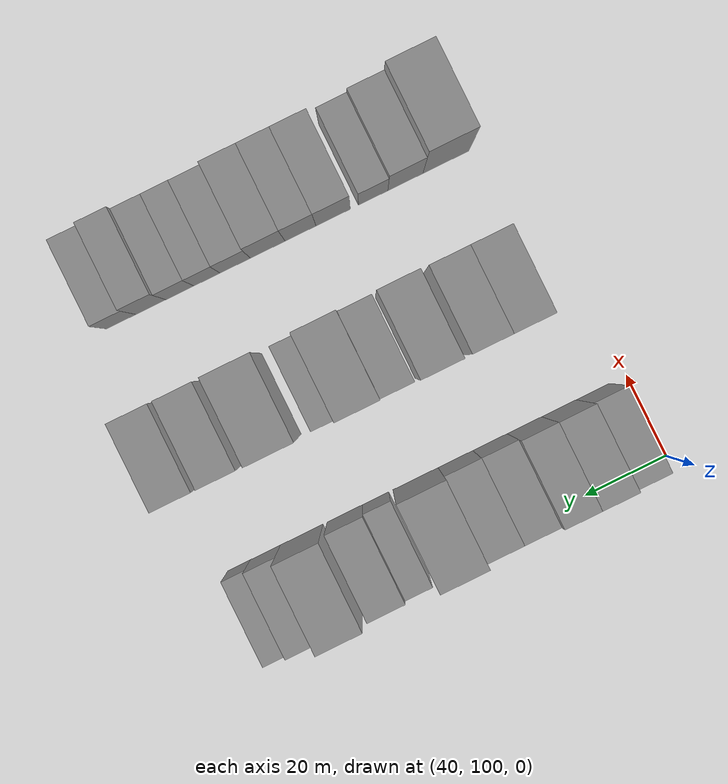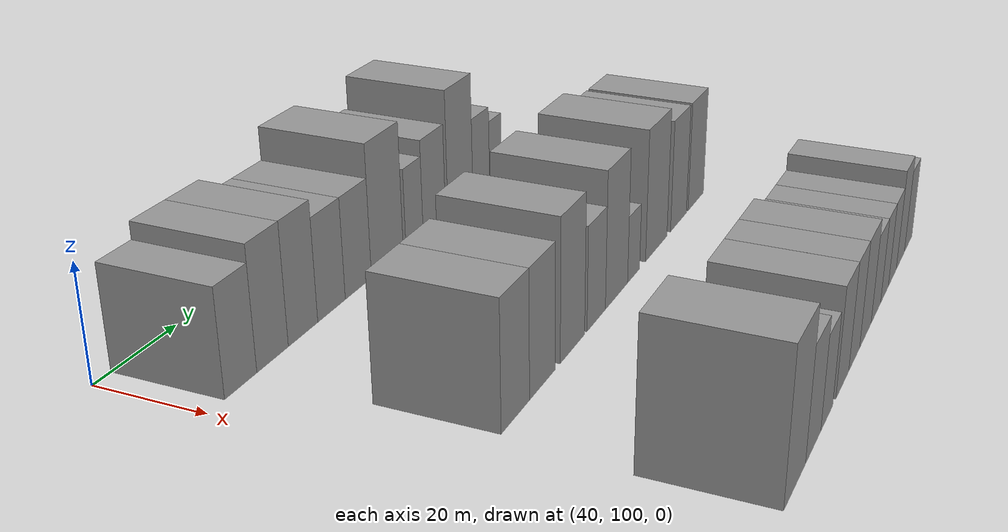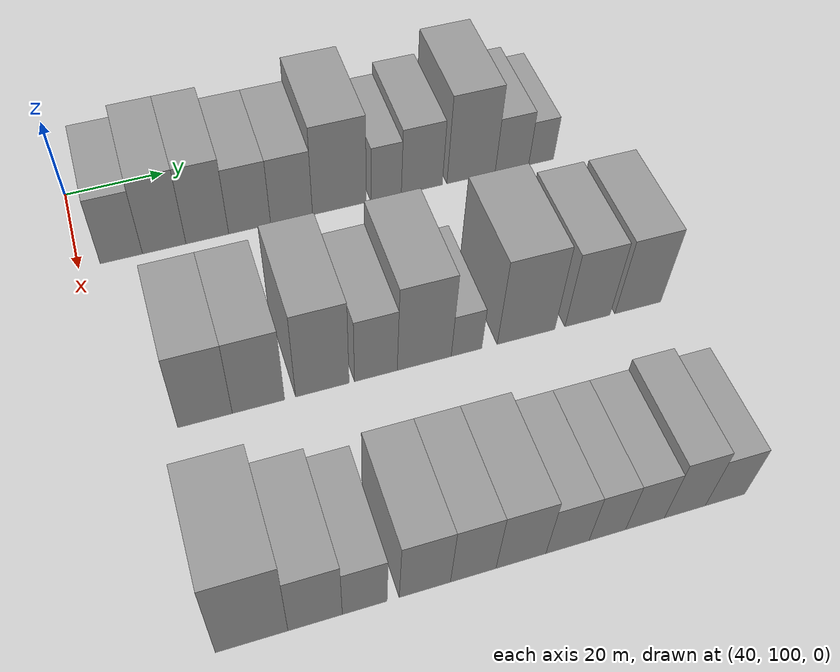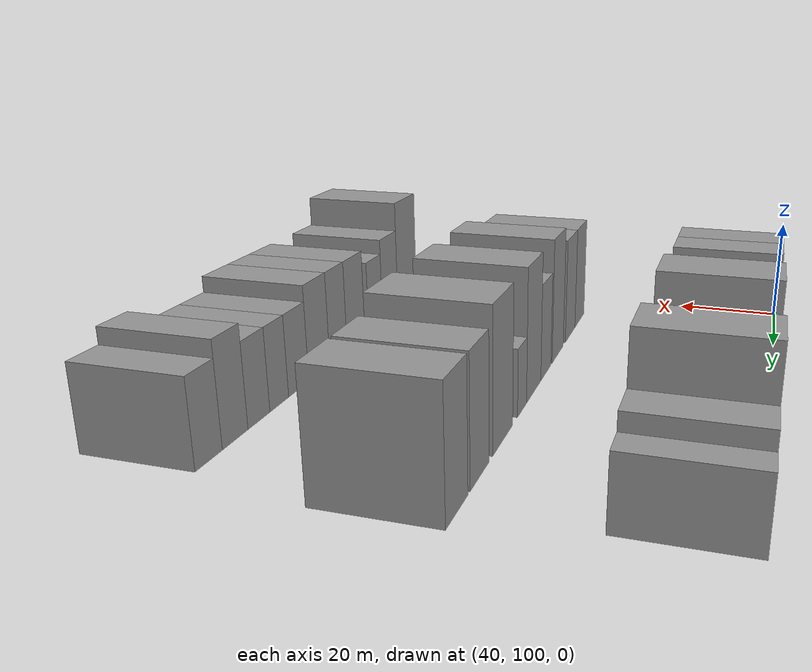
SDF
<sdf version="1.6">
 <world name="default">
  <model name="building_45">
   <static>1</static>
   <pose>50.0000 108.2754 0 0.000000 0.000000 0.000000</pose>
   <link name="link">
    <pose>0 0 9.00 0 0 0</pose>
    <collision name="collision"><geometry><box><size>20.0000 8.2067 18.0000</size></box></geometry></collision>
    <visual name="visual">
     <cast_shadows>0</cast_shadows>
     <geometry><box><size>20.0000 8.2067 18.0000</size></box></geometry>
     <material>
      <script>
       <uri>model://grey_wall/materials/scripts</uri>
       <uri>model://grey_wall/materials/textures</uri>
       <name>vrc/grey_wall</name>
      </script>
     </material>
    </visual>
   </link>
  </model>
  <model name="building_46">
   <static>1</static>
   <pose>50.0000 116.6519 0 0.000000 0.000000 0.000000</pose>
   <link name="link">
    <pose>0 0 10.50 0 0 0</pose>
    <collision name="collision"><geometry><box><size>20.0000 8.5463 21.0000</size></box></geometry></collision>
    <visual name="visual">
     <cast_shadows>0</cast_shadows>
     <geometry><box><size>20.0000 8.5463 21.0000</size></box></geometry>
     <material>
      <script>
       <uri>model://grey_wall/materials/scripts</uri>
       <uri>model://grey_wall/materials/textures</uri>
       <name>vrc/grey_wall</name>
      </script>
     </material>
    </visual>
   </link>
  </model>
  <model name="building_47">
   <static>1</static>
   <pose>50.0000 125.1842 0 0.000000 0.000000 0.000000</pose>
   <link name="link">
    <pose>0 0 10.50 0 0 0</pose>
    <collision name="collision"><geometry><box><size>20.0000 8.5184 21.0000</size></box></geometry></collision>
    <visual name="visual">
     <cast_shadows>0</cast_shadows>
     <geometry><box><size>20.0000 8.5184 21.0000</size></box></geometry>
     <material>
      <script>
       <uri>model://grey_wall/materials/scripts</uri>
       <uri>model://grey_wall/materials/textures</uri>
       <name>vrc/grey_wall</name>
      </script>
     </material>
    </visual>
   </link>
  </model>
  <model name="building_48">
   <static>1</static>
   <pose>50.0000 133.6895 0 0.000000 0.000000 0.000000</pose>
   <link name="link">
    <pose>0 0 9.00 0 0 0</pose>
    <collision name="collision"><geometry><box><size>20.0000 8.4922 18.0000</size></box></geometry></collision>
    <visual name="visual">
     <cast_shadows>0</cast_shadows>
     <geometry><box><size>20.0000 8.4922 18.0000</size></box></geometry>
     <material>
      <script>
       <uri>model://grey_wall/materials/scripts</uri>
       <uri>model://grey_wall/materials/textures</uri>
       <name>vrc/grey_wall</name>
      </script>
     </material>
    </visual>
   </link>
  </model>
  <model name="building_49">
   <static>1</static>
   <pose>50.0000 142.2258 0 0.000000 0.000000 0.000000</pose>
   <link name="link">
    <pose>0 0 9.00 0 0 0</pose>
    <collision name="collision"><geometry><box><size>20.0000 8.5804 18.0000</size></box></geometry></collision>
    <visual name="visual">
     <cast_shadows>0</cast_shadows>
     <geometry><box><size>20.0000 8.5804 18.0000</size></box></geometry>
     <material>
      <script>
       <uri>model://grey_wall/materials/scripts</uri>
       <uri>model://grey_wall/materials/textures</uri>
       <name>vrc/grey_wall</name>
      </script>
     </material>
    </visual>
   </link>
  </model>
  <model name="building_50">
   <static>1</static>
   <pose>50.0000 152.0911 0 0.000000 0.000000 0.000000</pose>
   <link name="link">
    <pose>0 0 12.00 0 0 0</pose>
    <collision name="collision"><geometry><box><size>20.0000 11.1502 24.0000</size></box></geometry></collision>
    <visual name="visual">
     <cast_shadows>0</cast_shadows>
     <geometry><box><size>20.0000 11.1502 24.0000</size></box></geometry>
     <material>
      <script>
       <uri>model://grey_wall/materials/scripts</uri>
       <uri>model://grey_wall/materials/textures</uri>
       <name>vrc/grey_wall</name>
      </script>
     </material>
    </visual>
   </link>
  </model>
  <model name="building_51">
   <static>1</static>
   <pose>50.0000 161.8931 0 0.000000 0.000000 0.000000</pose>
   <link name="link">
    <pose>0 0 7.50 0 0 0</pose>
    <collision name="collision"><geometry><box><size>20.0000 6.4537 15.0000</size></box></geometry></collision>
    <visual name="visual">
     <cast_shadows>0</cast_shadows>
     <geometry><box><size>20.0000 6.4537 15.0000</size></box></geometry>
     <material>
      <script>
       <uri>model://grey_wall/materials/scripts</uri>
       <uri>model://grey_wall/materials/textures</uri>
       <name>vrc/grey_wall</name>
      </script>
     </material>
    </visual>
   </link>
  </model>
  <model name="building_52">
   <static>1</static>
   <pose>50.0000 169.5108 0 0.000000 0.000000 0.000000</pose>
   <link name="link">
    <pose>0 0 9.00 0 0 0</pose>
    <collision name="collision"><geometry><box><size>20.0000 8.7818 18.0000</size></box></geometry></collision>
    <visual name="visual">
     <cast_shadows>0</cast_shadows>
     <geometry><box><size>20.0000 8.7818 18.0000</size></box></geometry>
     <material>
      <script>
       <uri>model://grey_wall/materials/scripts</uri>
       <uri>model://grey_wall/materials/textures</uri>
       <name>vrc/grey_wall</name>
      </script>
     </material>
    </visual>
   </link>
  </model>
  <model name="building_53">
   <static>1</static>
   <pose>50.0000 180.1559 0 0.000000 0.000000 0.000000</pose>
   <link name="link">
    <pose>0 0 12.00 0 0 0</pose>
    <collision name="collision"><geometry><box><size>20.0000 10.5083 24.0000</size></box></geometry></collision>
    <visual name="visual">
     <cast_shadows>0</cast_shadows>
     <geometry><box><size>20.0000 10.5083 24.0000</size></box></geometry>
     <material>
      <script>
       <uri>model://grey_wall/materials/scripts</uri>
       <uri>model://grey_wall/materials/textures</uri>
       <name>vrc/grey_wall</name>
      </script>
     </material>
    </visual>
   </link>
  </model>
  <model name="building_54">
   <static>1</static>
   <pose>50.0000 189.1252 0 0.000000 0.000000 0.000000</pose>
   <link name="link">
    <pose>0 0 7.50 0 0 0</pose>
    <collision name="collision"><geometry><box><size>20.0000 7.4304 15.0000</size></box></geometry></collision>
    <visual name="visual">
     <cast_shadows>0</cast_shadows>
     <geometry><box><size>20.0000 7.4304 15.0000</size></box></geometry>
     <material>
      <script>
       <uri>model://grey_wall/materials/scripts</uri>
       <uri>model://grey_wall/materials/textures</uri>
       <name>vrc/grey_wall</name>
      </script>
     </material>
    </visual>
   </link>
  </model>
  <model name="building_55">
   <static>1</static>
   <pose>50.0000 195.6003 0 0.000000 0.000000 0.000000</pose>
   <link name="link">
    <pose>0 0 6.00 0 0 0</pose>
    <collision name="collision"><geometry><box><size>20.0000 5.5198 12.0000</size></box></geometry></collision>
    <visual name="visual">
     <cast_shadows>0</cast_shadows>
     <geometry><box><size>20.0000 5.5198 12.0000</size></box></geometry>
     <material>
      <script>
       <uri>model://grey_wall/materials/scripts</uri>
       <uri>model://grey_wall/materials/textures</uri>
       <name>vrc/grey_wall</name>
      </script>
     </material>
    </visual>
   </link>
  </model>
  <model name="building_132">
   <static>1</static>
   <pose>90.0000 116.3301 0 0.000000 0.000000 0.000000</pose>
   <link name="link">
    <pose>0 0 10.50 0 0 0</pose>
    <collision name="collision"><geometry><box><size>20.0000 9.6318 21.0000</size></box></geometry></collision>
    <visual name="visual">
     <cast_shadows>0</cast_shadows>
     <geometry><box><size>20.0000 9.6318 21.0000</size></box></geometry>
     <material>
      <script>
       <uri>model://grey_wall/materials/scripts</uri>
       <uri>model://grey_wall/materials/textures</uri>
       <name>vrc/grey_wall</name>
      </script>
     </material>
    </visual>
   </link>
  </model>
  <model name="building_133">
   <static>1</static>
   <pose>90.0000 125.8318 0 0.000000 0.000000 0.000000</pose>
   <link name="link">
    <pose>0 0 10.50 0 0 0</pose>
    <collision name="collision"><geometry><box><size>20.0000 9.3715 21.0000</size></box></geometry></collision>
    <visual name="visual">
     <cast_shadows>0</cast_shadows>
     <geometry><box><size>20.0000 9.3715 21.0000</size></box></geometry>
     <material>
      <script>
       <uri>model://grey_wall/materials/scripts</uri>
       <uri>model://grey_wall/materials/textures</uri>
       <name>vrc/grey_wall</name>
      </script>
     </material>
    </visual>
   </link>
  </model>
  <model name="building_134">
   <static>1</static>
   <pose>90.0000 137.4226 0 0.000000 0.000000 0.000000</pose>
   <link name="link">
    <pose>0 0 12.00 0 0 0</pose>
    <collision name="collision"><geometry><box><size>20.0000 9.8100 24.0000</size></box></geometry></collision>
    <visual name="visual">
     <cast_shadows>0</cast_shadows>
     <geometry><box><size>20.0000 9.8100 24.0000</size></box></geometry>
     <material>
      <script>
       <uri>model://grey_wall/materials/scripts</uri>
       <uri>model://grey_wall/materials/textures</uri>
       <name>vrc/grey_wall</name>
      </script>
     </material>
    </visual>
   </link>
  </model>
  <model name="building_135">
   <static>1</static>
   <pose>90.0000 147.3107 0 0.000000 0.000000 0.000000</pose>
   <link name="link">
    <pose>0 0 9.00 0 0 0</pose>
    <collision name="collision"><geometry><box><size>20.0000 7.9663 18.0000</size></box></geometry></collision>
    <visual name="visual">
     <cast_shadows>0</cast_shadows>
     <geometry><box><size>20.0000 7.9663 18.0000</size></box></geometry>
     <material>
      <script>
       <uri>model://grey_wall/materials/scripts</uri>
       <uri>model://grey_wall/materials/textures</uri>
       <name>vrc/grey_wall</name>
      </script>
     </material>
    </visual>
   </link>
  </model>
  <model name="building_136">
   <static>1</static>
   <pose>90.0000 156.4259 0 0.000000 0.000000 0.000000</pose>
   <link name="link">
    <pose>0 0 12.00 0 0 0</pose>
    <collision name="collision"><geometry><box><size>20.0000 10.2640 24.0000</size></box></geometry></collision>
    <visual name="visual">
     <cast_shadows>0</cast_shadows>
     <geometry><box><size>20.0000 10.2640 24.0000</size></box></geometry>
     <material>
      <script>
       <uri>model://grey_wall/materials/scripts</uri>
       <uri>model://grey_wall/materials/textures</uri>
       <name>vrc/grey_wall</name>
      </script>
     </material>
    </visual>
   </link>
  </model>
  <model name="building_137">
   <static>1</static>
   <pose>90.0000 164.4988 0 0.000000 0.000000 0.000000</pose>
   <link name="link">
    <pose>0 0 6.00 0 0 0</pose>
    <collision name="collision"><geometry><box><size>20.0000 5.8819 12.0000</size></box></geometry></collision>
    <visual name="visual">
     <cast_shadows>0</cast_shadows>
     <geometry><box><size>20.0000 5.8819 12.0000</size></box></geometry>
     <material>
      <script>
       <uri>model://grey_wall/materials/scripts</uri>
       <uri>model://grey_wall/materials/textures</uri>
       <name>vrc/grey_wall</name>
      </script>
     </material>
    </visual>
   </link>
  </model>
  <model name="building_138">
   <static>1</static>
   <pose>90.0000 176.1143 0 0.000000 0.000000 0.000000</pose>
   <link name="link">
    <pose>0 0 12.00 0 0 0</pose>
    <collision name="collision"><geometry><box><size>20.0000 11.3491 24.0000</size></box></geometry></collision>
    <visual name="visual">
     <cast_shadows>0</cast_shadows>
     <geometry><box><size>20.0000 11.3491 24.0000</size></box></geometry>
     <material>
      <script>
       <uri>model://grey_wall/materials/scripts</uri>
       <uri>model://grey_wall/materials/textures</uri>
       <name>vrc/grey_wall</name>
      </script>
     </material>
    </visual>
   </link>
  </model>
  <model name="building_139">
   <static>1</static>
   <pose>90.0000 188.3137 0 0.000000 0.000000 0.000000</pose>
   <link name="link">
    <pose>0 0 10.50 0 0 0</pose>
    <collision name="collision"><geometry><box><size>20.0000 9.0496 21.0000</size></box></geometry></collision>
    <visual name="visual">
     <cast_shadows>0</cast_shadows>
     <geometry><box><size>20.0000 9.0496 21.0000</size></box></geometry>
     <material>
      <script>
       <uri>model://grey_wall/materials/scripts</uri>
       <uri>model://grey_wall/materials/textures</uri>
       <name>vrc/grey_wall</name>
      </script>
     </material>
    </visual>
   </link>
  </model>
  <model name="building_140">
   <static>1</static>
   <pose>90.0000 198.5256 0 0.000000 0.000000 0.000000</pose>
   <link name="link">
    <pose>0 0 10.50 0 0 0</pose>
    <collision name="collision"><geometry><box><size>20.0000 9.3743 21.0000</size></box></geometry></collision>
    <visual name="visual">
     <cast_shadows>0</cast_shadows>
     <geometry><box><size>20.0000 9.3743 21.0000</size></box></geometry>
     <material>
      <script>
       <uri>model://grey_wall/materials/scripts</uri>
       <uri>model://grey_wall/materials/textures</uri>
       <name>vrc/grey_wall</name>
      </script>
     </material>
    </visual>
   </link>
  </model>
  <model name="building_215">
   <static>1</static>
   <pose>130.0000 115.1324 0 0.000000 0.000000 0.000000</pose>
   <link name="link">
    <pose>0 0 12.00 0 0 0</pose>
    <collision name="collision"><geometry><box><size>20.0000 11.3277 24.0000</size></box></geometry></collision>
    <visual name="visual">
     <cast_shadows>0</cast_shadows>
     <geometry><box><size>20.0000 11.3277 24.0000</size></box></geometry>
     <material>
      <script>
       <uri>model://grey_wall/materials/scripts</uri>
       <uri>model://grey_wall/materials/textures</uri>
       <name>vrc/grey_wall</name>
      </script>
     </material>
    </visual>
   </link>
  </model>
  <model name="building_216">
   <static>1</static>
   <pose>130.0000 125.1248 0 0.000000 0.000000 0.000000</pose>
   <link name="link">
    <pose>0 0 9.00 0 0 0</pose>
    <collision name="collision"><geometry><box><size>20.0000 8.6571 18.0000</size></box></geometry></collision>
    <visual name="visual">
     <cast_shadows>0</cast_shadows>
     <geometry><box><size>20.0000 8.6571 18.0000</size></box></geometry>
     <material>
      <script>
       <uri>model://grey_wall/materials/scripts</uri>
       <uri>model://grey_wall/materials/textures</uri>
       <name>vrc/grey_wall</name>
      </script>
     </material>
    </visual>
   </link>
  </model>
  <model name="building_217">
   <static>1</static>
   <pose>130.0000 133.0703 0 0.000000 0.000000 0.000000</pose>
   <link name="link">
    <pose>0 0 7.50 0 0 0</pose>
    <collision name="collision"><geometry><box><size>20.0000 7.2340 15.0000</size></box></geometry></collision>
    <visual name="visual">
     <cast_shadows>0</cast_shadows>
     <geometry><box><size>20.0000 7.2340 15.0000</size></box></geometry>
     <material>
      <script>
       <uri>model://grey_wall/materials/scripts</uri>
       <uri>model://grey_wall/materials/textures</uri>
       <name>vrc/grey_wall</name>
      </script>
     </material>
    </visual>
   </link>
  </model>
  <model name="building_218">
   <static>1</static>
   <pose>130.0000 142.9153 0 0.000000 0.000000 0.000000</pose>
   <link name="link">
    <pose>0 0 9.00 0 0 0</pose>
    <collision name="collision"><geometry><box><size>20.0000 8.4559 18.0000</size></box></geometry></collision>
    <visual name="visual">
     <cast_shadows>0</cast_shadows>
     <geometry><box><size>20.0000 8.4559 18.0000</size></box></geometry>
     <material>
      <script>
       <uri>model://grey_wall/materials/scripts</uri>
       <uri>model://grey_wall/materials/textures</uri>
       <name>vrc/grey_wall</name>
      </script>
     </material>
    </visual>
   </link>
  </model>
  <model name="building_219">
   <static>1</static>
   <pose>130.0000 150.9673 0 0.000000 0.000000 0.000000</pose>
   <link name="link">
    <pose>0 0 9.00 0 0 0</pose>
    <collision name="collision"><geometry><box><size>20.0000 7.6480 18.0000</size></box></geometry></collision>
    <visual name="visual">
     <cast_shadows>0</cast_shadows>
     <geometry><box><size>20.0000 7.6480 18.0000</size></box></geometry>
     <material>
      <script>
       <uri>model://grey_wall/materials/scripts</uri>
       <uri>model://grey_wall/materials/textures</uri>
       <name>vrc/grey_wall</name>
      </script>
     </material>
    </visual>
   </link>
  </model>
  <model name="building_220">
   <static>1</static>
   <pose>130.0000 159.0610 0 0.000000 0.000000 0.000000</pose>
   <link name="link">
    <pose>0 0 9.00 0 0 0</pose>
    <collision name="collision"><geometry><box><size>20.0000 8.5395 18.0000</size></box></geometry></collision>
    <visual name="visual">
     <cast_shadows>0</cast_shadows>
     <geometry><box><size>20.0000 8.5395 18.0000</size></box></geometry>
     <material>
      <script>
       <uri>model://grey_wall/materials/scripts</uri>
       <uri>model://grey_wall/materials/textures</uri>
       <name>vrc/grey_wall</name>
      </script>
     </material>
    </visual>
   </link>
  </model>
  <model name="building_221">
   <static>1</static>
   <pose>130.0000 167.0696 0 0.000000 0.000000 0.000000</pose>
   <link name="link">
    <pose>0 0 7.50 0 0 0</pose>
    <collision name="collision"><geometry><box><size>20.0000 7.4778 15.0000</size></box></geometry></collision>
    <visual name="visual">
     <cast_shadows>0</cast_shadows>
     <geometry><box><size>20.0000 7.4778 15.0000</size></box></geometry>
     <material>
      <script>
       <uri>model://grey_wall/materials/scripts</uri>
       <uri>model://grey_wall/materials/textures</uri>
       <name>vrc/grey_wall</name>
      </script>
     </material>
    </visual>
   </link>
  </model>
  <model name="building_222">
   <static>1</static>
   <pose>130.0000 174.0285 0 0.000000 0.000000 0.000000</pose>
   <link name="link">
    <pose>0 0 7.50 0 0 0</pose>
    <collision name="collision"><geometry><box><size>20.0000 6.4399 15.0000</size></box></geometry></collision>
    <visual name="visual">
     <cast_shadows>0</cast_shadows>
     <geometry><box><size>20.0000 6.4399 15.0000</size></box></geometry>
     <material>
      <script>
       <uri>model://grey_wall/materials/scripts</uri>
       <uri>model://grey_wall/materials/textures</uri>
       <name>vrc/grey_wall</name>
      </script>
     </material>
    </visual>
   </link>
  </model>
  <model name="building_223">
   <static>1</static>
   <pose>130.0000 180.7086 0 0.000000 0.000000 0.000000</pose>
   <link name="link">
    <pose>0 0 7.50 0 0 0</pose>
    <collision name="collision"><geometry><box><size>20.0000 6.9204 15.0000</size></box></geometry></collision>
    <visual name="visual">
     <cast_shadows>0</cast_shadows>
     <geometry><box><size>20.0000 6.9204 15.0000</size></box></geometry>
     <material>
      <script>
       <uri>model://grey_wall/materials/scripts</uri>
       <uri>model://grey_wall/materials/textures</uri>
       <name>vrc/grey_wall</name>
      </script>
     </material>
    </visual>
   </link>
  </model>
  <model name="building_224">
   <static>1</static>
   <pose>130.0000 187.8837 0 0.000000 0.000000 0.000000</pose>
   <link name="link">
    <pose>0 0 9.00 0 0 0</pose>
    <collision name="collision"><geometry><box><size>20.0000 7.4297 18.0000</size></box></geometry></collision>
    <visual name="visual">
     <cast_shadows>0</cast_shadows>
     <geometry><box><size>20.0000 7.4297 18.0000</size></box></geometry>
     <material>
      <script>
       <uri>model://grey_wall/materials/scripts</uri>
       <uri>model://grey_wall/materials/textures</uri>
       <name>vrc/grey_wall</name>
      </script>
     </material>
    </visual>
   </link>
  </model>
  <model name="building_225">
   <static>1</static>
   <pose>130.0000 195.2244 0 0.000000 0.000000 0.000000</pose>
   <link name="link">
    <pose>0 0 7.50 0 0 0</pose>
    <collision name="collision"><geometry><box><size>20.0000 7.2517 15.0000</size></box></geometry></collision>
    <visual name="visual">
     <cast_shadows>0</cast_shadows>
     <geometry><box><size>20.0000 7.2517 15.0000</size></box></geometry>
     <material>
      <script>
       <uri>model://grey_wall/materials/scripts</uri>
       <uri>model://grey_wall/materials/textures</uri>
       <name>vrc/grey_wall</name>
      </script>
     </material>
    </visual>
   </link>
  </model>
 </world>
</sdf>
